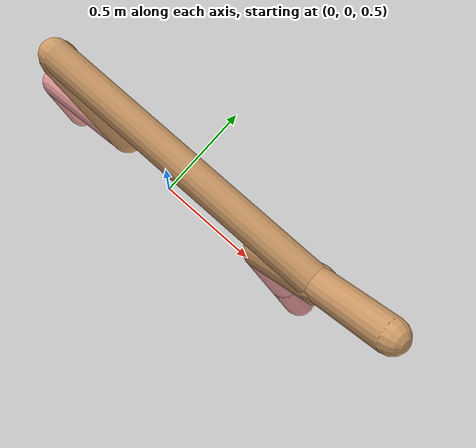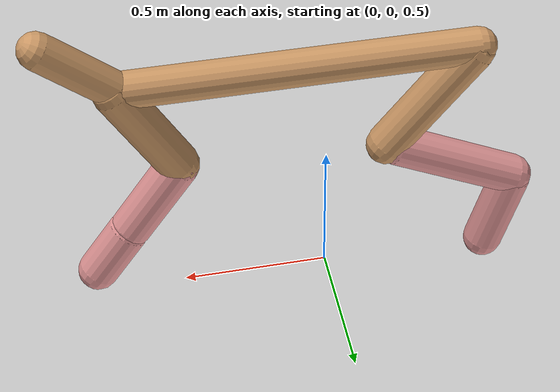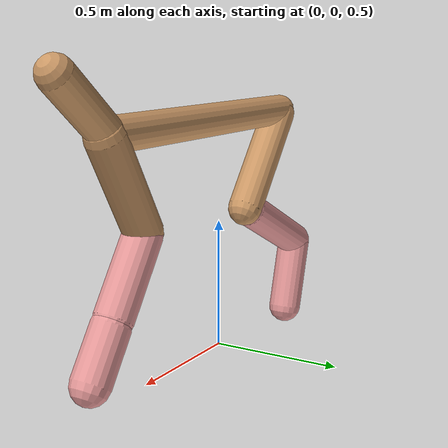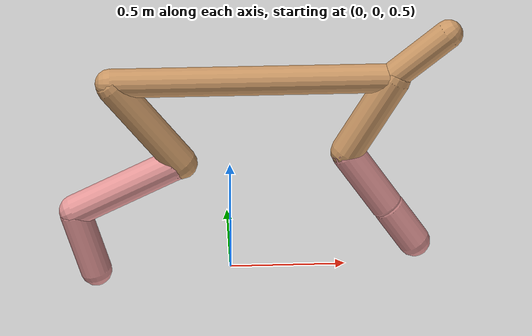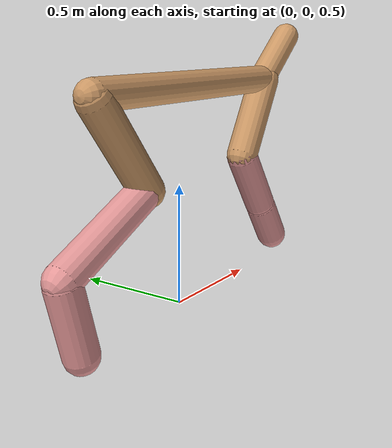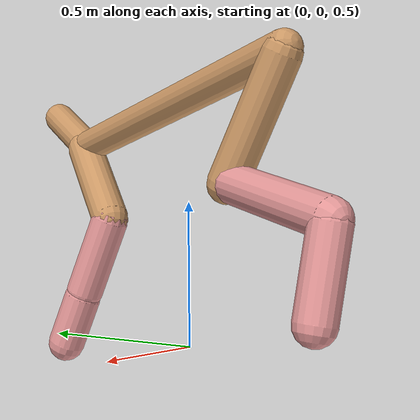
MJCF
<mujoco model="cheetah">
  <compiler angle="radian" coordinate="local" inertiafromgeom="true" settotalmass="14" />
  <default>
    <joint armature=".1" damping=".01" limited="true" solimplimit="0 .8 .03" solreflimit=".02 1" stiffness="8" />
    <geom conaffinity="0" condim="3" contype="1" friction="0.8 .1 .1" rgba="0.8 0.6 .4 1" solimp="0.0 0.8 0.01" solref="0.02 1" />
    <motor ctrllimited="true" ctrlrange="-1 1" />
  </default>
  <size nstack="300000" nuser_geom="1" />
  <option gravity="0 0 -9.81" timestep="0.01" />
  <worldbody>
    <body name="torso" pos="0.0 0.0 1.3945897294223524">
      <joint armature="0" axis="1 0 0" damping="0" limited="false" name="ignorex" pos="0 0 0" stiffness="0" type="slide" />
      <joint armature="0" axis="0 0 1" damping="0" limited="false" name="ignorez" pos="0 0 0" stiffness="0" type="slide" />
      <joint armature="0" axis="0 1 0" damping="0" limited="false" name="ignorey" pos="0 0 0" stiffness="0" type="hinge" />
      <geom fromto="-0.5 0.0 0.0 0.6964125291902892 0.0 0.0" name="torso" size="0.06194193222079876" type="capsule" />
      <geom axisangle="0 1 0 .87" name="head" pos="0.7964125291902892 0.0 0.1" size="0.06149018188012638 0.15" type="capsule" />

      <body name="bthigh" pos="-.5 0 0">
        <joint axis="0 1 0" damping="6" name="bthigh" pos="0 0 0" range="-.52 1.05" stiffness="240" type="hinge" />
        <geom axisangle="0 1 0 -3.8" name="bthigh" pos="0.152040110761568 0.0 -0.1976521439900384" size="0.06932100021089085 0.23035212776800093" type="capsule" />
        <body name="bshin" pos="0.26408022152313604 0.0 -0.38530428798007677">
          <joint axis="0 1 0" damping="4.5" name="bshin" pos="0 0 0" range="-.785 .785" stiffness="180" type="hinge" />
          <geom axisangle="0 1 0 -2.03" name="bshin" pos="-0.2189737212607576 0.0 -0.1094868606303788" rgba="0.9 0.6 0.6 1" size="0.06932100021089085 0.2382953045875872" type="capsule" />
          <body name="bfoot" pos="-0.4379474425215152 0.0 -0.2189737212607576">
            <joint axis="0 1 0" damping="3" name="bfoot" pos="0 0 0" range="-.4 .785" stiffness="120" type="hinge" />
            <geom axisangle="0 1 0 -.27" name="bfoot" pos="0.04634884922060341 0.0 -0.14986127914661768" rgba="0.9 0.6 0.6 1" size="0.06932100021089085 0.1493317242082213" type="capsule" />
            <inertial mass="10" />
          </body>
        </body>
      </body>
      <body name="fthigh" pos="0.6964125291902892 0.0 0.0">
        <joint axis="0 1 0" damping="4.5" name="fthigh" pos="0 0 0" range="-1.5 0.8" stiffness="180" type="hinge" />
        <geom axisangle="0 1 0 .52" name="fthigh" pos="-0.10094463903812975 0.0 -0.17304795263679384" size="0.07051987321705439 0.19441380923013707" type="capsule" />
        <body name="fshin" pos="-0.2018892780762595 0.0 -0.3460959052735877">
          <joint axis="0 1 0" damping="3" name="fshin" pos="0 0 0" range="-1.2 1.1" stiffness="120" type="hinge" />
          <geom axisangle="0 1 0 -.6" name="fshin" pos="0.09365762217341009 0.0 -0.12967978454779858" rgba="0.9 0.6 0.6 1" size="0.07051987321705439 0.1549463441984551" type="capsule" />
          <body name="ffoot" pos="0.18731524434682018 0.0 -0.25935956909559715">
            <joint axis="0 1 0" damping="1.5" name="ffoot" pos="0 0 0" range="-3.1 -0.3" stiffness="60" type="hinge" />
            <geom axisangle="0 1 0 -.6" name="ffoot" pos="0.06247893871193454 0.0 -0.09718946021856485" rgba="0.9 0.6 0.6 1" size="0.07051987321705439 0.10232305748954583" type="capsule" />
            <inertial mass="10" />
          </body>
        </body>
      </body>
    </body>
  </worldbody>
  <actuator>
    <motor gear="120" joint="bthigh" name="bthigh" />
    <motor gear="90" joint="bshin" name="bshin" />
    <motor gear="60" joint="bfoot" name="bfoot" />
    <motor gear="120" joint="fthigh" name="fthigh" />
    <motor gear="60" joint="fshin" name="fshin" />
    <motor gear="30" joint="ffoot" name="ffoot" />
  </actuator>
</mujoco>
